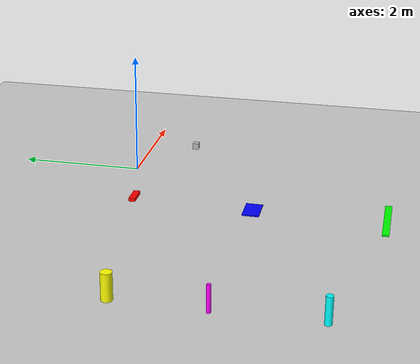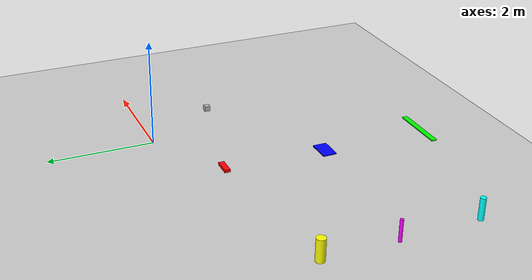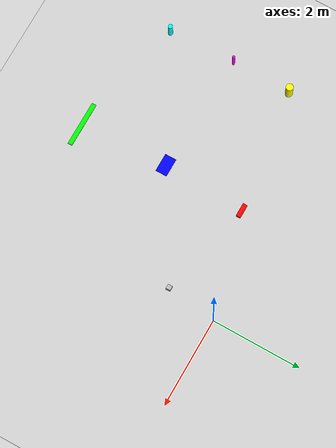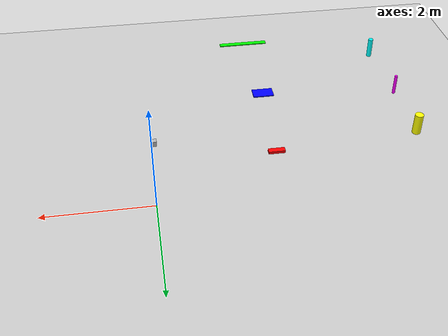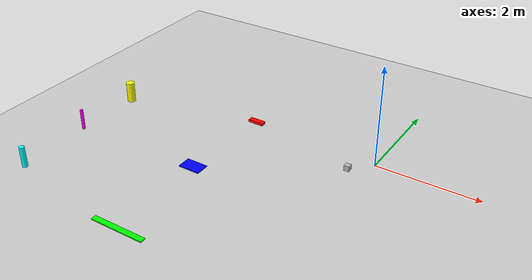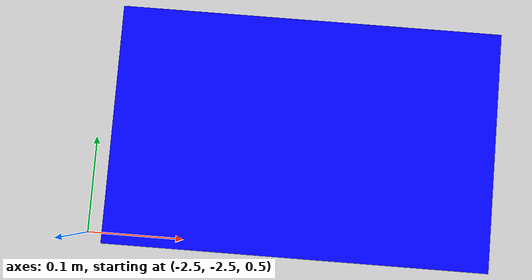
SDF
<sdf version='1.10'>
  <world name='empty'>
    <physics name='1ms' type='ignored'>
      <max_step_size>0.001</max_step_size>
      <real_time_factor>1</real_time_factor>
      <real_time_update_rate>1000</real_time_update_rate>
    </physics>
    <plugin name='gz::sim::systems::Physics' filename='gz-sim-physics-system'/>
    <plugin name='gz::sim::systems::UserCommands' filename='gz-sim-user-commands-system'/>
    <plugin name='gz::sim::systems::SceneBroadcaster' filename='gz-sim-scene-broadcaster-system'/>
    <plugin
      filename="gz-sim-sensors-system"
      name="gz::sim::systems::Sensors">
      <render_engine>ogre2</render_engine>
    </plugin>
    <plugin name='gz::sim::systems::Contact' filename='gz-sim-contact-system'/>
    <gravity>0 0 -9.8000000000000007</gravity>
    <magnetic_field>5.5644999999999998e-06 2.2875799999999999e-05 -4.2388400000000002e-05</magnetic_field>
    <atmosphere type='adiabatic'/>
    <scene>
      <ambient>0.400000006 0.400000006 0.400000006 1</ambient>
      <background>0.699999988 0.699999988 0.699999988 1</background>
      <shadows>true</shadows>
    </scene>
    <model name='ground_plane'>
      <static>true</static>
      <link name='link'>
        <collision name='collision'>
          <geometry>
            <plane>
              <normal>0 0 1</normal>
              <size>100 100</size>
            </plane>
          </geometry>
          <surface>
            <friction>
              <ode/>
            </friction>
            <bounce/>
            <contact/>
          </surface>
        </collision>
        <visual name='visual'>
          <geometry>
            <plane>
              <normal>0 0 1</normal>
              <size>100 100</size>
            </plane>
          </geometry>
          <material>
            <ambient>0.800000012 0.800000012 0.800000012 1</ambient>
            <diffuse>0.800000012 0.800000012 0.800000012 1</diffuse>
            <specular>0.800000012 0.800000012 0.800000012 1</specular>
          </material>
        </visual>
        <pose>0 0 0 0 0 0</pose>
        <inertial>
          <pose>0 0 0 0 0 0</pose>
          <mass>1</mass>
          <inertia>
            <ixx>1</ixx>
            <ixy>0</ixy>
            <ixz>0</ixz>
            <iyy>1</iyy>
            <iyz>0</iyz>
            <izz>1</izz>
          </inertia>
        </inertial>
        <enable_wind>false</enable_wind>
      </link>
      <pose>0 0 0 0 0 0</pose>
      <self_collide>false</self_collide>
    </model>
    <model name='usb'>
      <pose>-2.1877003887709074 -0.5624695330939542 0.5 0 0 0</pose>
      <link name='box_link'>
        <inertial>
          <inertia>
            <ixx>0.16666</ixx>
            <ixy>0</ixy>
            <ixz>0</ixz>
            <iyy>0.16666</iyy>
            <iyz>0</iyz>
            <izz>0.16666</izz>
          </inertia>
          <mass>1</mass>
          <pose>0 0 0 0 0 0</pose>
        </inertial>
        <collision name='box_collision'>
          <geometry>
            <box>
              <size>0.30 0.10 0.05</size>
            </box>
          </geometry>
          <surface>
            <friction>
              <ode/>
            </friction>
            <bounce/>
            <contact/>
          </surface>
        </collision>
        <visual name='box_visual'>
          <geometry>
            <box>
              <size>0.30 0.10 0.05</size>
            </box>
          </geometry>
          <material>
            <ambient>1 0 0 1</ambient>
            <diffuse>1 0 0 1</diffuse>
            <specular>1 1 1 1</specular>
          </material>
        </visual>
        <pose>0 0 0 0 0 0</pose>
        <enable_wind>false</enable_wind>
      </link>
      <static>false</static>
      <self_collide>false</self_collide>
    </model>
    <model name='credit_card'>
      <pose>-2.2827056370298244 -2.3846038677416774 0.5 0 0 0</pose>
      <link name='box_link'>
        <inertial>
          <inertia>
            <ixx>0.16666</ixx>
            <ixy>0</ixy>
            <ixz>0</ixz>
            <iyy>0.16666</iyy>
            <iyz>0</iyz>
            <izz>0.16666</izz>
          </inertia>
          <mass>1</mass>
          <pose>0 0 0 0 0 0</pose>
        </inertial>
        <collision name='box_collision'>
          <geometry>
            <box>
              <size>0.40 0.25 0.02</size>
            </box>
          </geometry>
          <surface>
            <friction>
              <ode/>
            </friction>
            <bounce/>
            <contact/>
          </surface>
        </collision>
        <visual name='box_visual'>
          <geometry>
            <box>
              <size>0.40 0.25 0.02</size>
            </box>
          </geometry>
          <material>
            <ambient>0 0 1 1</ambient>
            <diffuse>0 0 1 1</diffuse>
            <specular>1 1 1 1</specular>
          </material>
        </visual>
        <pose>0 0 0 0 0 0</pose>
        <enable_wind>false</enable_wind>
      </link>
      <static>false</static>
      <self_collide>false</self_collide>
    </model>
    <model name='ruler'>
      <pose>-2.2071640999212296 -4.3262305579606499 0.5 0 0 0</pose>
      <link name='box_link'>
        <inertial>
          <inertia>
            <ixx>0.16666</ixx>
            <ixy>0</ixy>
            <ixz>0</ixz>
            <iyy>0.16666</iyy>
            <iyz>0</iyz>
            <izz>0.16666</izz>
          </inertia>
          <mass>1</mass>
          <pose>0 0 0 0 0 0</pose>
        </inertial>
        <collision name='box_collision'>
          <geometry>
            <box>
              <size>1.00 0.10 0.02</size>
            </box>
          </geometry>
          <surface>
            <friction>
              <ode/>
            </friction>
            <bounce/>
            <contact/>
          </surface>
        </collision>
        <visual name='box_visual'>
          <geometry>
            <box>
              <size>1.00 0.10 0.02</size>
            </box>
          </geometry>
          <material>
            <ambient>0 1 0 1</ambient>
            <diffuse>0 1 0 1</diffuse>
            <specular>1 1 1 1</specular>
          </material>
        </visual>
        <pose>0 0 0 0 0 0</pose>
        <enable_wind>false</enable_wind>
      </link>
      <static>false</static>
      <self_collide>false</self_collide>
    </model>
    <model name='bottle'>
      <pose>-4.9443664021853335 -0.96036808145364749 0.5 0 0 0</pose>
      <link name='cylinder_link'>
        <inertial>
          <inertia>
            <ixx>0.14580000000000001</ixx>
            <ixy>0</ixy>
            <ixz>0</ixz>
            <iyy>0.14580000000000001</iyy>
            <iyz>0</iyz>
            <izz>0.125</izz>
          </inertia>
          <mass>1</mass>
          <pose>0 0 0 0 0 0</pose>
        </inertial>
        <collision name='cylinder_collision'>
          <geometry>
            <cylinder>
              <radius>0.08</radius>
              <length>0.40</length>
            </cylinder>
          </geometry>
          <surface>
            <friction>
              <ode/>
            </friction>
            <bounce/>
            <contact/>
          </surface>
        </collision>
        <visual name='cylinder_visual'>
          <geometry>
            <cylinder>
              <radius>0.08</radius>
              <length>0.40</length>
            </cylinder>
          </geometry>
          <material>
            <ambient>1 1 0 1</ambient>
            <diffuse>1 1 0 1</diffuse>
            <specular>1 1 1 1</specular>
          </material>
        </visual>
        <pose>0 0 0 0 0 0</pose>
        <enable_wind>false</enable_wind>
      </link>
      <static>false</static>
      <self_collide>false</self_collide>
    </model>
    <model name='pen'>
      <pose>-4.961837548956801 -2.2843624628155998 0.5 0 0 0</pose>
      <link name='cylinder_link'>
        <inertial>
          <inertia>
            <ixx>0.14580000000000001</ixx>
            <ixy>0</ixy>
            <ixz>0</ixz>
            <iyy>0.14580000000000001</iyy>
            <iyz>0</iyz>
            <izz>0.125</izz>
          </inertia>
          <mass>1</mass>
          <pose>0 0 0 0 0 0</pose>
        </inertial>
        <collision name='cylinder_collision'>
          <geometry>
            <cylinder>
              <radius>0.03</radius>
              <length>0.40</length>
            </cylinder>
          </geometry>
          <surface>
            <friction>
              <ode/>
            </friction>
            <bounce/>
            <contact/>
          </surface>
        </collision>
        <visual name='cylinder_visual'>
          <geometry>
            <cylinder>
              <radius>0.03</radius>
              <length>0.40</length>
            </cylinder>
          </geometry>
          <material>
            <ambient>1 0 1 1</ambient>
            <diffuse>1 0 1 1</diffuse>
            <specular>1 1 1 1</specular>
          </material>
        </visual>
        <pose>0 0 0 0 0 0</pose>
        <enable_wind>false</enable_wind>
      </link>
      <static>false</static>
      <self_collide>false</self_collide>
    </model>
    <model name='marker'>
      <pose>-4.90873086455899 -3.7613948764558351 0.5 0 0 0</pose>
      <link name='cylinder_link'>
        <inertial>
          <inertia>
            <ixx>0.14580000000000001</ixx>
            <ixy>0</ixy>
            <ixz>0</ixz>
            <iyy>0.14580000000000001</iyy>
            <iyz>0</iyz>
            <izz>0.125</izz>
          </inertia>
          <mass>1</mass>
          <pose>0 0 0 0 0 0</pose>
        </inertial>
        <collision name='cylinder_collision'>
          <geometry>
            <cylinder>
              <radius>0.05</radius>
              <length>0.40</length>
            </cylinder>
          </geometry>
          <surface>
            <friction>
              <ode/>
            </friction>
            <bounce/>
            <contact/>
          </surface>
        </collision>
        <visual name='cylinder_visual'>
          <geometry>
            <cylinder>
              <radius>0.05</radius>
              <length>0.40</length>
            </cylinder>
          </geometry>
          <material>
            <ambient>0 1 1 1</ambient>
            <diffuse>0 1 1 1</diffuse>
            <specular>1 1 1 1</specular>
          </material>
        </visual>
        <pose>0 0 0 0 0 0</pose>
        <enable_wind>false</enable_wind>
      </link>
      <static>false</static>
      <self_collide>false</self_collide>
    </model>
    <light name='sun' type='directional'>
      <pose>0 0 10 0 0 0</pose>
      <cast_shadows>true</cast_shadows>
      <intensity>1</intensity>
      <direction>-0.5 0.10000000000000001 -0.90000000000000002</direction>
      <diffuse>0.800000012 0.800000012 0.800000012 1</diffuse>
      <specular>0.200000003 0.200000003 0.200000003 1</specular>
      <attenuation>
        <range>1000</range>
        <linear>0.01</linear>
        <constant>0.90000000000000002</constant>
        <quadratic>0.001</quadratic>
      </attenuation>
      <spot>
        <inner_angle>0</inner_angle>
        <outer_angle>0</outer_angle>
        <falloff>0</falloff>
      </spot>
    </light>

    <model name="depth_camera">
      <pose>0 -1 0.5 0 0 3.14</pose>

      <link name="link">

        <pose>0.05 0.05 0.05 0 0 0</pose>

        <inertial>
          <mass>0.1</mass>
          <inertia>
            <ixx>0.000166667</ixx>
            <iyy>0.000166667</iyy>
            <izz>0.000166667</izz>
          </inertia>
        </inertial>

        <collision name="collision">
          <geometry>
            <box>
              <size>0.1 0.1 0.1</size>
            </box>
          </geometry>
        </collision>

        <visual name="visual">
          <geometry>
            <box>
              <size>0.1 0.1 0.1</size>
            </box>
          </geometry>
        </visual>

        <sensor name="depth_camera1" type="depth_camera">
          <update_rate>10</update_rate>

          <topic>depth_camera</topic>

          <camera>
            <horizontal_fov>1.05</horizontal_fov>

            <image>
              <width>256</width>
              <height>256</height>
              <format>R_FLOAT32</format>
            </image>

            <clip>
              <near>0.1</near>
              <far>10.0</far>
            </clip>
          </camera>

        </sensor>

        <sensor name="rgb_camera" type="camera">
          <always_on>true</always_on>
          <visualize>true</visualize>

          <update_rate>10</update_rate>

          <topic>rgb_camera</topic>

          <camera>

            <horizontal_fov>1.05</horizontal_fov>

            <image>
              <width>640</width>
              <height>480</height>
              <format>R8G8B8</format>
            </image>

            <clip>
              <near>0.1</near>
              <far>10.0</far>
            </clip>

          </camera>

        </sensor>

      </link>

      <static>true</static>

    </model>

  </world>
</sdf>
